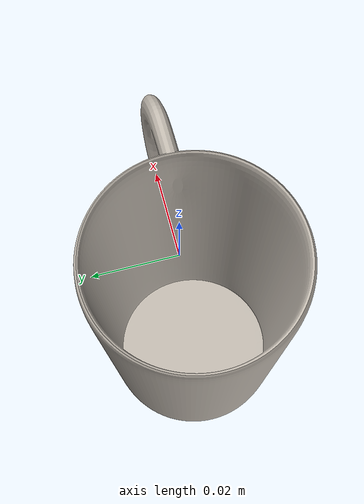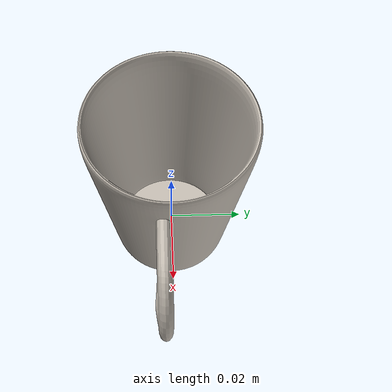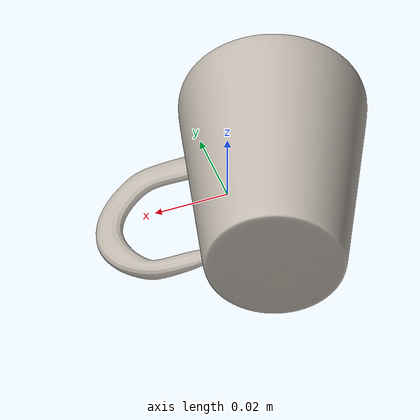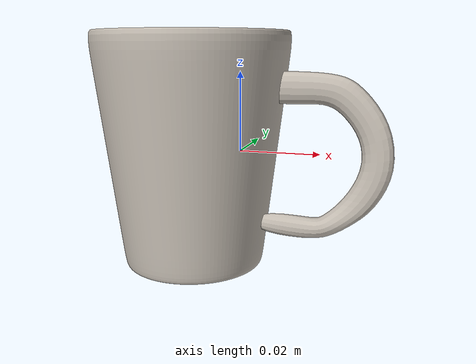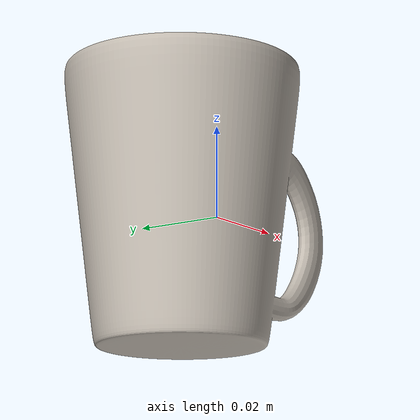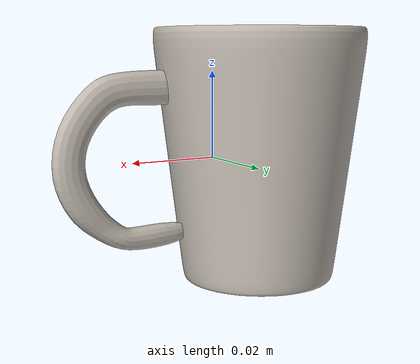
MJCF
<mujoco model="mug_10">
  <asset>
    <texture file="/home/abhiram03/Desktop/mimicgen/robosuite-kitchen/robosuite/models/assets/textures/ceramic.png" name="tex-mug_10" type="2d"/>
    <material name="mug_10" reflectance="0.5" texrepeat="1 1" texture="tex-mug_10" texuniform="false"/>
    <mesh file="visual/model_normalized_0.obj" name="model_normalized_0_vis" scale="0.07499999999999998 0.07499999999999998 0.07499999999999998" refquat="0.7071067811865475 1.3877787807814457e-17 1.3877787807814457e-17 0.7071067811865475"/>
    <mesh file="collision/model_normalized_collision_13.obj" name="model_normalized_collision_13._coll" scale="0.07499999999999998 0.07499999999999998 0.07499999999999998" refquat="0.7071067811865475 1.3877787807814457e-17 1.3877787807814457e-17 0.7071067811865475"/>
    <mesh file="collision/model_normalized_collision_15.obj" name="model_normalized_collision_15._coll" scale="0.07499999999999998 0.07499999999999998 0.07499999999999998" refquat="0.7071067811865475 1.3877787807814457e-17 1.3877787807814457e-17 0.7071067811865475"/>
    <mesh file="collision/model_normalized_collision_10.obj" name="model_normalized_collision_10._coll" scale="0.07499999999999998 0.07499999999999998 0.07499999999999998" refquat="0.7071067811865475 1.3877787807814457e-17 1.3877787807814457e-17 0.7071067811865475"/>
    <mesh file="collision/model_normalized_collision_26.obj" name="model_normalized_collision_26._coll" scale="0.07499999999999998 0.07499999999999998 0.07499999999999998" refquat="0.7071067811865475 1.3877787807814457e-17 1.3877787807814457e-17 0.7071067811865475"/>
    <mesh file="collision/model_normalized_collision_25.obj" name="model_normalized_collision_25._coll" scale="0.07499999999999998 0.07499999999999998 0.07499999999999998" refquat="0.7071067811865475 1.3877787807814457e-17 1.3877787807814457e-17 0.7071067811865475"/>
    <mesh file="collision/model_normalized_collision_5.obj" name="model_normalized_collision_5._coll" scale="0.07499999999999998 0.07499999999999998 0.07499999999999998" refquat="0.7071067811865475 1.3877787807814457e-17 1.3877787807814457e-17 0.7071067811865475"/>
    <mesh file="collision/model_normalized_collision_31.obj" name="model_normalized_collision_31._coll" scale="0.07499999999999998 0.07499999999999998 0.07499999999999998" refquat="0.7071067811865475 1.3877787807814457e-17 1.3877787807814457e-17 0.7071067811865475"/>
    <mesh file="collision/model_normalized_collision_3.obj" name="model_normalized_collision_3._coll" scale="0.07499999999999998 0.07499999999999998 0.07499999999999998" refquat="0.7071067811865475 1.3877787807814457e-17 1.3877787807814457e-17 0.7071067811865475"/>
    <mesh file="collision/model_normalized_collision_14.obj" name="model_normalized_collision_14._coll" scale="0.07499999999999998 0.07499999999999998 0.07499999999999998" refquat="0.7071067811865475 1.3877787807814457e-17 1.3877787807814457e-17 0.7071067811865475"/>
    <mesh file="collision/model_normalized_collision_28.obj" name="model_normalized_collision_28._coll" scale="0.07499999999999998 0.07499999999999998 0.07499999999999998" refquat="0.7071067811865475 1.3877787807814457e-17 1.3877787807814457e-17 0.7071067811865475"/>
    <mesh file="collision/model_normalized_collision_11.obj" name="model_normalized_collision_11._coll" scale="0.07499999999999998 0.07499999999999998 0.07499999999999998" refquat="0.7071067811865475 1.3877787807814457e-17 1.3877787807814457e-17 0.7071067811865475"/>
    <mesh file="collision/model_normalized_collision_29.obj" name="model_normalized_collision_29._coll" scale="0.07499999999999998 0.07499999999999998 0.07499999999999998" refquat="0.7071067811865475 1.3877787807814457e-17 1.3877787807814457e-17 0.7071067811865475"/>
    <mesh file="collision/model_normalized_collision_24.obj" name="model_normalized_collision_24._coll" scale="0.07499999999999998 0.07499999999999998 0.07499999999999998" refquat="0.7071067811865475 1.3877787807814457e-17 1.3877787807814457e-17 0.7071067811865475"/>
    <mesh file="collision/model_normalized_collision_1.obj" name="model_normalized_collision_1._coll" scale="0.07499999999999998 0.07499999999999998 0.07499999999999998" refquat="0.7071067811865475 1.3877787807814457e-17 1.3877787807814457e-17 0.7071067811865475"/>
    <mesh file="collision/model_normalized_collision_0.obj" name="model_normalized_collision_0._coll" scale="0.07499999999999998 0.07499999999999998 0.07499999999999998" refquat="0.7071067811865475 1.3877787807814457e-17 1.3877787807814457e-17 0.7071067811865475"/>
    <mesh file="collision/model_normalized_collision_27.obj" name="model_normalized_collision_27._coll" scale="0.07499999999999998 0.07499999999999998 0.07499999999999998" refquat="0.7071067811865475 1.3877787807814457e-17 1.3877787807814457e-17 0.7071067811865475"/>
    <mesh file="collision/model_normalized_collision_9.obj" name="model_normalized_collision_9._coll" scale="0.07499999999999998 0.07499999999999998 0.07499999999999998" refquat="0.7071067811865475 1.3877787807814457e-17 1.3877787807814457e-17 0.7071067811865475"/>
    <mesh file="collision/model_normalized_collision_19.obj" name="model_normalized_collision_19._coll" scale="0.07499999999999998 0.07499999999999998 0.07499999999999998" refquat="0.7071067811865475 1.3877787807814457e-17 1.3877787807814457e-17 0.7071067811865475"/>
    <mesh file="collision/model_normalized_collision_21.obj" name="model_normalized_collision_21._coll" scale="0.07499999999999998 0.07499999999999998 0.07499999999999998" refquat="0.7071067811865475 1.3877787807814457e-17 1.3877787807814457e-17 0.7071067811865475"/>
    <mesh file="collision/model_normalized_collision_30.obj" name="model_normalized_collision_30._coll" scale="0.07499999999999998 0.07499999999999998 0.07499999999999998" refquat="0.7071067811865475 1.3877787807814457e-17 1.3877787807814457e-17 0.7071067811865475"/>
    <mesh file="collision/model_normalized_collision_20.obj" name="model_normalized_collision_20._coll" scale="0.07499999999999998 0.07499999999999998 0.07499999999999998" refquat="0.7071067811865475 1.3877787807814457e-17 1.3877787807814457e-17 0.7071067811865475"/>
    <mesh file="collision/model_normalized_collision_2.obj" name="model_normalized_collision_2._coll" scale="0.07499999999999998 0.07499999999999998 0.07499999999999998" refquat="0.7071067811865475 1.3877787807814457e-17 1.3877787807814457e-17 0.7071067811865475"/>
    <mesh file="collision/model_normalized_collision_7.obj" name="model_normalized_collision_7._coll" scale="0.07499999999999998 0.07499999999999998 0.07499999999999998" refquat="0.7071067811865475 1.3877787807814457e-17 1.3877787807814457e-17 0.7071067811865475"/>
    <mesh file="collision/model_normalized_collision_22.obj" name="model_normalized_collision_22._coll" scale="0.07499999999999998 0.07499999999999998 0.07499999999999998" refquat="0.7071067811865475 1.3877787807814457e-17 1.3877787807814457e-17 0.7071067811865475"/>
    <mesh file="collision/model_normalized_collision_16.obj" name="model_normalized_collision_16._coll" scale="0.07499999999999998 0.07499999999999998 0.07499999999999998" refquat="0.7071067811865475 1.3877787807814457e-17 1.3877787807814457e-17 0.7071067811865475"/>
    <mesh file="collision/model_normalized_collision_8.obj" name="model_normalized_collision_8._coll" scale="0.07499999999999998 0.07499999999999998 0.07499999999999998" refquat="0.7071067811865475 1.3877787807814457e-17 1.3877787807814457e-17 0.7071067811865475"/>
    <mesh file="collision/model_normalized_collision_6.obj" name="model_normalized_collision_6._coll" scale="0.07499999999999998 0.07499999999999998 0.07499999999999998" refquat="0.7071067811865475 1.3877787807814457e-17 1.3877787807814457e-17 0.7071067811865475"/>
    <mesh file="collision/model_normalized_collision_18.obj" name="model_normalized_collision_18._coll" scale="0.07499999999999998 0.07499999999999998 0.07499999999999998" refquat="0.7071067811865475 1.3877787807814457e-17 1.3877787807814457e-17 0.7071067811865475"/>
    <mesh file="collision/model_normalized_collision_17.obj" name="model_normalized_collision_17._coll" scale="0.07499999999999998 0.07499999999999998 0.07499999999999998" refquat="0.7071067811865475 1.3877787807814457e-17 1.3877787807814457e-17 0.7071067811865475"/>
    <mesh file="collision/model_normalized_collision_12.obj" name="model_normalized_collision_12._coll" scale="0.07499999999999998 0.07499999999999998 0.07499999999999998" refquat="0.7071067811865475 1.3877787807814457e-17 1.3877787807814457e-17 0.7071067811865475"/>
    <mesh file="collision/model_normalized_collision_4.obj" name="model_normalized_collision_4._coll" scale="0.07499999999999998 0.07499999999999998 0.07499999999999998" refquat="0.7071067811865475 1.3877787807814457e-17 1.3877787807814457e-17 0.7071067811865475"/>
    <mesh file="collision/model_normalized_collision_23.obj" name="model_normalized_collision_23._coll" scale="0.07499999999999998 0.07499999999999998 0.07499999999999998" refquat="0.7071067811865475 1.3877787807814457e-17 1.3877787807814457e-17 0.7071067811865475"/>
    <texture type="2d" name="c80847104924_mug__3d_asset_0_glb_texture_kd" file="visual/c80847104924_mug__3d_asset_0_glb_texture_kd.png"/>
    <material name="Material_0" texture="c80847104924_mug__3d_asset_0_glb_texture_kd" specular="0.5" shininess="0.5"/>
  </asset>
  <worldbody>
    <body>
      <body name="object">
        <geom solimp="0.998 0.998 0.001" solref="0.001 1" density="100" friction="0.95 0.3 0.1" type="mesh" mesh="model_normalized_0_vis" conaffinity="0" contype="0" group="1" material="Material_0"/>
        <geom solimp="0.998 0.998 0.001" solref="0.001 1" density="100" friction="0.95 0.3 0.1" type="mesh" mesh="model_normalized_collision_13._coll" group="0" rgba="0.8 0.8 0.8 0.0"/>
        <geom solimp="0.998 0.998 0.001" solref="0.001 1" density="100" friction="0.95 0.3 0.1" type="mesh" mesh="model_normalized_collision_15._coll" group="0" rgba="0.8 0.8 0.8 0.0"/>
        <geom solimp="0.998 0.998 0.001" solref="0.001 1" density="100" friction="0.95 0.3 0.1" type="mesh" mesh="model_normalized_collision_10._coll" group="0" rgba="0.8 0.8 0.8 0.0"/>
        <geom solimp="0.998 0.998 0.001" solref="0.001 1" density="100" friction="0.95 0.3 0.1" type="mesh" mesh="model_normalized_collision_26._coll" group="0" rgba="0.8 0.8 0.8 0.0"/>
        <geom solimp="0.998 0.998 0.001" solref="0.001 1" density="100" friction="0.95 0.3 0.1" type="mesh" mesh="model_normalized_collision_25._coll" group="0" rgba="0.8 0.8 0.8 0.0"/>
        <geom solimp="0.998 0.998 0.001" solref="0.001 1" density="100" friction="0.95 0.3 0.1" type="mesh" mesh="model_normalized_collision_5._coll" group="0" rgba="0.8 0.8 0.8 0.0"/>
        <geom solimp="0.998 0.998 0.001" solref="0.001 1" density="100" friction="0.95 0.3 0.1" type="mesh" mesh="model_normalized_collision_31._coll" group="0" rgba="0.8 0.8 0.8 0.0"/>
        <geom solimp="0.998 0.998 0.001" solref="0.001 1" density="100" friction="0.95 0.3 0.1" type="mesh" mesh="model_normalized_collision_3._coll" group="0" rgba="0.8 0.8 0.8 0.0"/>
        <geom solimp="0.998 0.998 0.001" solref="0.001 1" density="100" friction="0.95 0.3 0.1" type="mesh" mesh="model_normalized_collision_14._coll" group="0" rgba="0.8 0.8 0.8 0.0"/>
        <geom solimp="0.998 0.998 0.001" solref="0.001 1" density="100" friction="0.95 0.3 0.1" type="mesh" mesh="model_normalized_collision_28._coll" group="0" rgba="0.8 0.8 0.8 0.0"/>
        <geom solimp="0.998 0.998 0.001" solref="0.001 1" density="100" friction="0.95 0.3 0.1" type="mesh" mesh="model_normalized_collision_11._coll" group="0" rgba="0.8 0.8 0.8 0.0"/>
        <geom solimp="0.998 0.998 0.001" solref="0.001 1" density="100" friction="0.95 0.3 0.1" type="mesh" mesh="model_normalized_collision_29._coll" group="0" rgba="0.8 0.8 0.8 0.0"/>
        <geom solimp="0.998 0.998 0.001" solref="0.001 1" density="100" friction="0.95 0.3 0.1" type="mesh" mesh="model_normalized_collision_24._coll" group="0" rgba="0.8 0.8 0.8 0.0"/>
        <geom solimp="0.998 0.998 0.001" solref="0.001 1" density="100" friction="0.95 0.3 0.1" type="mesh" mesh="model_normalized_collision_1._coll" group="0" rgba="0.8 0.8 0.8 0.0"/>
        <geom solimp="0.998 0.998 0.001" solref="0.001 1" density="100" friction="0.95 0.3 0.1" type="mesh" mesh="model_normalized_collision_0._coll" group="0" rgba="0.8 0.8 0.8 0.0"/>
        <geom solimp="0.998 0.998 0.001" solref="0.001 1" density="100" friction="0.95 0.3 0.1" type="mesh" mesh="model_normalized_collision_27._coll" group="0" rgba="0.8 0.8 0.8 0.0"/>
        <geom solimp="0.998 0.998 0.001" solref="0.001 1" density="100" friction="0.95 0.3 0.1" type="mesh" mesh="model_normalized_collision_9._coll" group="0" rgba="0.8 0.8 0.8 0.0"/>
        <geom solimp="0.998 0.998 0.001" solref="0.001 1" density="100" friction="0.95 0.3 0.1" type="mesh" mesh="model_normalized_collision_19._coll" group="0" rgba="0.8 0.8 0.8 0.0"/>
        <geom solimp="0.998 0.998 0.001" solref="0.001 1" density="100" friction="0.95 0.3 0.1" type="mesh" mesh="model_normalized_collision_21._coll" group="0" rgba="0.8 0.8 0.8 0.0"/>
        <geom solimp="0.998 0.998 0.001" solref="0.001 1" density="100" friction="0.95 0.3 0.1" type="mesh" mesh="model_normalized_collision_30._coll" group="0" rgba="0.8 0.8 0.8 0.0"/>
        <geom solimp="0.998 0.998 0.001" solref="0.001 1" density="100" friction="0.95 0.3 0.1" type="mesh" mesh="model_normalized_collision_20._coll" group="0" rgba="0.8 0.8 0.8 0.0"/>
        <geom solimp="0.998 0.998 0.001" solref="0.001 1" density="100" friction="0.95 0.3 0.1" type="mesh" mesh="model_normalized_collision_2._coll" group="0" rgba="0.8 0.8 0.8 0.0"/>
        <geom solimp="0.998 0.998 0.001" solref="0.001 1" density="100" friction="0.95 0.3 0.1" type="mesh" mesh="model_normalized_collision_7._coll" group="0" rgba="0.8 0.8 0.8 0.0"/>
        <geom solimp="0.998 0.998 0.001" solref="0.001 1" density="100" friction="0.95 0.3 0.1" type="mesh" mesh="model_normalized_collision_22._coll" group="0" rgba="0.8 0.8 0.8 0.0"/>
        <geom solimp="0.998 0.998 0.001" solref="0.001 1" density="100" friction="0.95 0.3 0.1" type="mesh" mesh="model_normalized_collision_16._coll" group="0" rgba="0.8 0.8 0.8 0.0"/>
        <geom solimp="0.998 0.998 0.001" solref="0.001 1" density="100" friction="0.95 0.3 0.1" type="mesh" mesh="model_normalized_collision_8._coll" group="0" rgba="0.8 0.8 0.8 0.0"/>
        <geom solimp="0.998 0.998 0.001" solref="0.001 1" density="100" friction="0.95 0.3 0.1" type="mesh" mesh="model_normalized_collision_6._coll" group="0" rgba="0.8 0.8 0.8 0.0"/>
        <geom solimp="0.998 0.998 0.001" solref="0.001 1" density="100" friction="0.95 0.3 0.1" type="mesh" mesh="model_normalized_collision_18._coll" group="0" rgba="0.8 0.8 0.8 0.0"/>
        <geom solimp="0.998 0.998 0.001" solref="0.001 1" density="100" friction="0.95 0.3 0.1" type="mesh" mesh="model_normalized_collision_17._coll" group="0" rgba="0.8 0.8 0.8 0.0"/>
        <geom solimp="0.998 0.998 0.001" solref="0.001 1" density="100" friction="0.95 0.3 0.1" type="mesh" mesh="model_normalized_collision_12._coll" group="0" rgba="0.8 0.8 0.8 0.0"/>
        <geom solimp="0.998 0.998 0.001" solref="0.001 1" density="100" friction="0.95 0.3 0.1" type="mesh" mesh="model_normalized_collision_4._coll" group="0" rgba="0.8 0.8 0.8 0.0"/>
        <geom solimp="0.998 0.998 0.001" solref="0.001 1" density="100" friction="0.95 0.3 0.1" type="mesh" mesh="model_normalized_collision_23._coll" group="0" rgba="0.8 0.8 0.8 0.0"/>
      </body>
      <site rgba="0 0 0 0" size="0.005" pos="3.7500000188428466e-10 4.068037499999968e-05 -0.029228231249999997" name="bottom_site"/>
      <site rgba="0 0 0 0" size="0.005" pos="3.7500000188428466e-10 4.068037499999968e-05 0.02872631624999999" name="top_site"/>
      <site rgba="0 0 0 0" size="0.005" pos="0.03806818349999999 0.0261770445 -0.0002509575000000013" name="horizontal_radius_site"/>
    </body>
  </worldbody>
</mujoco>
